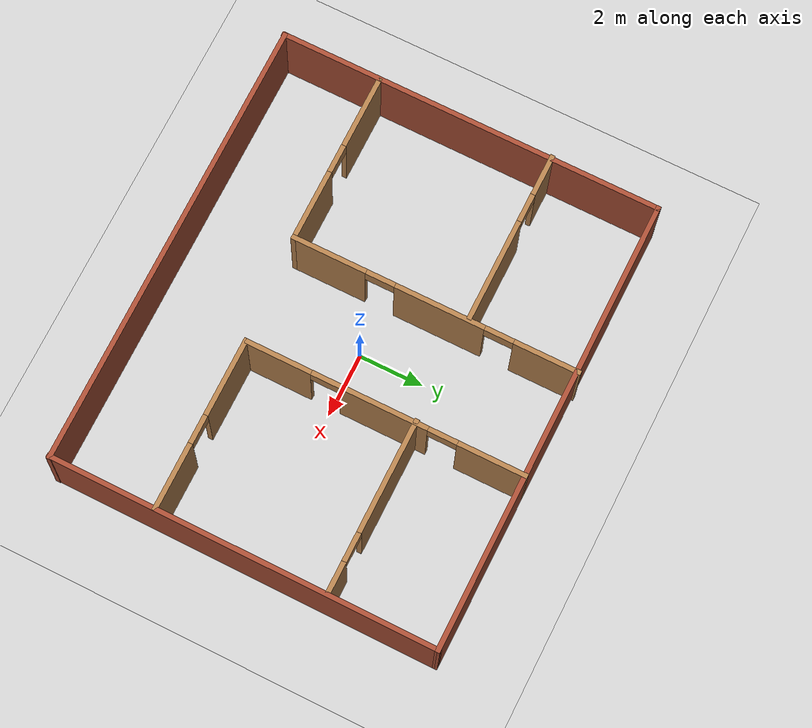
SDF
<sdf version="1.7">
 <world name="default">
  <light name="sun" type="directional">
   <pose>0 0 10 0 -0 0</pose>
   <diffuse>0.8 0.8 0.8 1</diffuse>
   <specular>0.2 0.2 0.2 1</specular>
   <attenuation>
    <range>1000</range>
    <constant>0.9</constant>
    <linear>0.01</linear>
    <quadratic>0.001</quadratic>
   </attenuation>
   <direction>-0.5 0.1 -0.9</direction>
   <spot><inner_angle>0</inner_angle><outer_angle>0</outer_angle><falloff>0</falloff></spot>
  </light>
  <model name="ground_plane">
   <static>1</static>
   <link name="link">
    <collision name="collision">
     <geometry><plane><normal>0 0 1</normal><size>100 100</size></plane></geometry>
     <surface><friction><ode><mu>100</mu><mu2>50</mu2></ode></friction></surface>
    </collision>
    <visual name="visual">
     <cast_shadows>0</cast_shadows>
     <geometry><plane><normal>0 0 1</normal><size>100 100</size></plane></geometry>
     <material>
      <script><uri>file://media/materials/scripts/gazebo.material</uri><name>Gazebo/Grey</name></script>
     </material>
    </visual>
   </link>
  </model>
  <gravity>0 0 -9.8</gravity>
  <magnetic_field>6e-06 2.3e-05 -4.2e-05</magnetic_field>
  <atmosphere type="adiabatic"/>
  <physics type="ode">
   <max_step_size>0.001</max_step_size>
   <real_time_factor>1</real_time_factor>
   <real_time_update_rate>1000</real_time_update_rate>
  </physics>
  <scene><ambient>0.4 0.4 0.4 1</ambient><background>0.7 0.7 0.7 1</background><shadows>1</shadows></scene>
  <audio><device>default</device></audio>
  <spherical_coordinates>
   <surface_model>EARTH_WGS84</surface_model>
   <latitude_deg>0</latitude_deg>
   <longitude_deg>0</longitude_deg>
   <elevation>0</elevation>
   <heading_deg>0</heading_deg>
  </spherical_coordinates>
  <model name="my_floor">
   <pose>0.035132 -0.005772 0 0 -0 0</pose>
   <link name="Wall_1">
    <collision name="Wall_1_Collision">
     <geometry><box><size>12.035 0.15 2.5</size></box></geometry>
     <pose>0 0 1.25 0 -0 0</pose>
    </collision>
    <visual name="Wall_1_Visual">
     <pose>0 0 1.25 0 -0 0</pose>
     <geometry><box><size>12.035 0.15 2.5</size></box></geometry>
     <material>
      <script><uri>file://media/materials/scripts/gazebo.material</uri><name>Gazebo/Bricks</name></script>
      <ambient>0.435294 0.796078 0.67451 1</ambient>
     </material>
     <meta><layer>0</layer></meta>
    </visual>
    <pose>-7.04136 -0.026125 0 0 -0 -1.57374</pose>
   </link>
   <link name="Wall_17">
    <pose>-1.63694 1.54384 0 0 -0 -1.5708</pose>
    <visual name="Wall_17_Visual_0">
     <pose>-3.47194 0 1.25 0 -0 0</pose>
     <geometry><box><size>2.05612 0.15 2.5</size></box></geometry>
     <material>
      <script><uri>file://media/materials/scripts/gazebo.material</uri><name>Gazebo/Wood</name></script>
      <ambient>1 1 1 1</ambient>
     </material>
     <meta><layer>0</layer></meta>
    </visual>
    <collision name="Wall_17_Collision_0">
     <geometry><box><size>2.05612 0.15 2.5</size></box></geometry>
     <pose>-3.47194 0 1.25 0 -0 0</pose>
    </collision>
    <visual name="Wall_17_Visual_1">
     <pose>-0.14868 0 1.25 0 -0 0</pose>
     <geometry><box><size>2.7904 0.15 2.5</size></box></geometry>
     <material>
      <script><uri>file://media/materials/scripts/gazebo.material</uri><name>Gazebo/Wood</name></script>
      <ambient>1 1 1 1</ambient>
     </material>
     <meta><layer>0</layer></meta>
    </visual>
    <collision name="Wall_17_Collision_1">
     <geometry><box><size>2.7904 0.15 2.5</size></box></geometry>
     <pose>-0.14868 0 1.25 0 -0 0</pose>
    </collision>
    <visual name="Wall_17_Visual_2">
     <pose>3.32326 0 1.25 0 -0 0</pose>
     <geometry><box><size>2.35348 0.15 2.5</size></box></geometry>
     <material>
      <script><uri>file://media/materials/scripts/gazebo.material</uri><name>Gazebo/Wood</name></script>
      <ambient>1 1 1 1</ambient>
     </material>
     <meta><layer>0</layer></meta>
    </visual>
    <collision name="Wall_17_Collision_2">
     <geometry><box><size>2.35348 0.15 2.5</size></box></geometry>
     <pose>3.32326 0 1.25 0 -0 0</pose>
    </collision>
    <visual name="Wall_17_Visual_3">
     <pose>-1.99388 0 2.25 0 -0 0</pose>
     <geometry><box><size>0.9 0.15 0.5</size></box></geometry>
     <material>
      <script><uri>file://media/materials/scripts/gazebo.material</uri><name>Gazebo/Wood</name></script>
      <ambient>1 1 1 1</ambient>
     </material>
     <meta><layer>0</layer></meta>
    </visual>
    <collision name="Wall_17_Collision_3">
     <geometry><box><size>0.9 0.15 0.5</size></box></geometry>
     <pose>-1.99388 0 2.25 0 -0 0</pose>
    </collision>
    <visual name="Wall_17_Visual_4">
     <pose>1.69652 0 2.25 0 -0 0</pose>
     <geometry><box><size>0.9 0.15 0.5</size></box></geometry>
     <material>
      <script><uri>file://media/materials/scripts/gazebo.material</uri><name>Gazebo/Wood</name></script>
      <ambient>1 1 1 1</ambient>
     </material>
     <meta><layer>0</layer></meta>
    </visual>
    <collision name="Wall_17_Collision_4">
     <geometry><box><size>0.9 0.15 0.5</size></box></geometry>
     <pose>1.69652 0 2.25 0 -0 0</pose>
    </collision>
   </link>
   <link name="Wall_18">
    <pose>-4.31194 -2.88117 0 0 -0 3.14159</pose>
    <visual name="Wall_18_Visual_0">
     <pose>-1.60825 0 1.25 0 -0 0</pose>
     <geometry><box><size>2.28349 0.15 2.5</size></box></geometry>
     <material>
      <script><uri>file://media/materials/scripts/gazebo.material</uri><name>Gazebo/Wood</name></script>
      <ambient>1 1 1 1</ambient>
     </material>
     <meta><layer>0</layer></meta>
    </visual>
    <collision name="Wall_18_Collision_0">
     <geometry><box><size>2.28349 0.15 2.5</size></box></geometry>
     <pose>-1.60825 0 1.25 0 -0 0</pose>
    </collision>
    <visual name="Wall_18_Visual_1">
     <pose>1.59174 0 1.25 0 -0 0</pose>
     <geometry><box><size>2.31651 0.15 2.5</size></box></geometry>
     <material>
      <script><uri>file://media/materials/scripts/gazebo.material</uri><name>Gazebo/Wood</name></script>
      <ambient>1 1 1 1</ambient>
     </material>
     <meta><layer>0</layer></meta>
    </visual>
    <collision name="Wall_18_Collision_1">
     <geometry><box><size>2.31651 0.15 2.5</size></box></geometry>
     <pose>1.59174 0 1.25 0 -0 0</pose>
    </collision>
    <visual name="Wall_18_Visual_2">
     <pose>-0.01651 0 2.25 0 -0 0</pose>
     <geometry><box><size>0.9 0.15 0.5</size></box></geometry>
     <material>
      <script><uri>file://media/materials/scripts/gazebo.material</uri><name>Gazebo/Wood</name></script>
      <ambient>1 1 1 1</ambient>
     </material>
     <meta><layer>0</layer></meta>
    </visual>
    <collision name="Wall_18_Collision_2">
     <geometry><box><size>0.9 0.15 0.5</size></box></geometry>
     <pose>-0.01651 0 2.25 0 -0 0</pose>
    </collision>
   </link>
   <link name="Wall_2">
    <collision name="Wall_2_Collision">
     <geometry><box><size>14.25 0.15 2.5</size></box></geometry>
     <pose>0 0 1.25 0 -0 0</pose>
    </collision>
    <visual name="Wall_2_Visual">
     <pose>0 0 1.25 0 -0 0</pose>
     <geometry><box><size>14.25 0.15 2.5</size></box></geometry>
     <material>
      <script><uri>file://media/materials/scripts/gazebo.material</uri><name>Gazebo/Bricks</name></script>
      <ambient>0.435294 0.796078 0.67451 1</ambient>
     </material>
     <meta><layer>0</layer></meta>
    </visual>
    <pose>0.008635 -5.95113 0 0 -0 0</pose>
   </link>
   <link name="Wall_20">
    <pose>-4.40135 2.57576 0 0 -0 0</pose>
    <visual name="Wall_20_Visual_0">
     <pose>-2.08049 0 1.25 0 -0 0</pose>
     <geometry><box><size>1.33903 0.15 2.5</size></box></geometry>
     <material>
      <script><uri>file://media/materials/scripts/gazebo.material</uri><name>Gazebo/Wood</name></script>
      <ambient>1 1 1 1</ambient>
     </material>
     <meta><layer>0</layer></meta>
    </visual>
    <collision name="Wall_20_Collision_0">
     <geometry><box><size>1.33903 0.15 2.5</size></box></geometry>
     <pose>-2.08049 0 1.25 0 -0 0</pose>
    </collision>
    <visual name="Wall_20_Visual_1">
     <pose>1.11951 0 1.25 0 -0 0</pose>
     <geometry><box><size>3.26097 0.15 2.5</size></box></geometry>
     <material>
      <script><uri>file://media/materials/scripts/gazebo.material</uri><name>Gazebo/Wood</name></script>
      <ambient>1 1 1 1</ambient>
     </material>
     <meta><layer>0</layer></meta>
    </visual>
    <collision name="Wall_20_Collision_1">
     <geometry><box><size>3.26097 0.15 2.5</size></box></geometry>
     <pose>1.11951 0 1.25 0 -0 0</pose>
    </collision>
    <visual name="Wall_20_Visual_2">
     <pose>-0.960974 0 2.25 0 -0 0</pose>
     <geometry><box><size>0.9 0.15 0.5</size></box></geometry>
     <material>
      <script><uri>file://media/materials/scripts/gazebo.material</uri><name>Gazebo/Wood</name></script>
      <ambient>1 1 1 1</ambient>
     </material>
     <meta><layer>0</layer></meta>
    </visual>
    <collision name="Wall_20_Collision_2">
     <geometry><box><size>0.9 0.15 0.5</size></box></geometry>
     <pose>-0.960974 0 2.25 0 -0 0</pose>
    </collision>
   </link>
   <link name="Wall_22">
    <pose>1.68618 1.61637 0 0 -0 -1.5708</pose>
    <visual name="Wall_22_Visual_0">
     <pose>-3.31196 0 1.25 0 -0 0</pose>
     <geometry><box><size>2.12608 0.15 2.5</size></box></geometry>
     <material>
      <script><uri>file://media/materials/scripts/gazebo.material</uri><name>Gazebo/Wood</name></script>
      <ambient>1 1 1 1</ambient>
     </material>
     <meta><layer>0</layer></meta>
    </visual>
    <collision name="Wall_22_Collision_0">
     <geometry><box><size>2.12608 0.15 2.5</size></box></geometry>
     <pose>-3.31196 0 1.25 0 -0 0</pose>
    </collision>
    <visual name="Wall_22_Visual_1">
     <pose>0.002555 0 1.25 0 -0 0</pose>
     <geometry><box><size>2.70295 0.15 2.5</size></box></geometry>
     <material>
      <script><uri>file://media/materials/scripts/gazebo.material</uri><name>Gazebo/Wood</name></script>
      <ambient>1 1 1 1</ambient>
     </material>
     <meta><layer>0</layer></meta>
    </visual>
    <collision name="Wall_22_Collision_1">
     <geometry><box><size>2.70295 0.15 2.5</size></box></geometry>
     <pose>0.002555 0 1.25 0 -0 0</pose>
    </collision>
    <visual name="Wall_22_Visual_2">
     <pose>3.31452 0 1.25 0 -0 0</pose>
     <geometry><box><size>2.12097 0.15 2.5</size></box></geometry>
     <material>
      <script><uri>file://media/materials/scripts/gazebo.material</uri><name>Gazebo/Wood</name></script>
      <ambient>1 1 1 1</ambient>
     </material>
     <meta><layer>0</layer></meta>
    </visual>
    <collision name="Wall_22_Collision_2">
     <geometry><box><size>2.12097 0.15 2.5</size></box></geometry>
     <pose>3.31452 0 1.25 0 -0 0</pose>
    </collision>
    <visual name="Wall_22_Visual_3">
     <pose>-1.79892 0 2.25 0 -0 0</pose>
     <geometry><box><size>0.9 0.15 0.5</size></box></geometry>
     <material>
      <script><uri>file://media/materials/scripts/gazebo.material</uri><name>Gazebo/Wood</name></script>
      <ambient>1 1 1 1</ambient>
     </material>
     <meta><layer>0</layer></meta>
    </visual>
    <collision name="Wall_22_Collision_3">
     <geometry><box><size>0.9 0.15 0.5</size></box></geometry>
     <pose>-1.79892 0 2.25 0 -0 0</pose>
    </collision>
    <visual name="Wall_22_Visual_4">
     <pose>1.80403 0 2.25 0 -0 0</pose>
     <geometry><box><size>0.9 0.15 0.5</size></box></geometry>
     <material>
      <script><uri>file://media/materials/scripts/gazebo.material</uri><name>Gazebo/Wood</name></script>
      <ambient>1 1 1 1</ambient>
     </material>
     <meta><layer>0</layer></meta>
    </visual>
    <collision name="Wall_22_Collision_4">
     <geometry><box><size>0.9 0.15 0.5</size></box></geometry>
     <pose>1.80403 0 2.25 0 -0 0</pose>
    </collision>
   </link>
   <link name="Wall_26">
    <pose>4.36118 -2.68364 0 0 -0 0</pose>
    <visual name="Wall_26_Visual_0">
     <pose>-1.51206 0 1.25 0 -0 0</pose>
     <geometry><box><size>2.47588 0.15 2.5</size></box></geometry>
     <material>
      <script><uri>file://media/materials/scripts/gazebo.material</uri><name>Gazebo/Wood</name></script>
      <ambient>1 1 1 1</ambient>
     </material>
     <meta><layer>0</layer></meta>
    </visual>
    <collision name="Wall_26_Collision_0">
     <geometry><box><size>2.47588 0.15 2.5</size></box></geometry>
     <pose>-1.51206 0 1.25 0 -0 0</pose>
    </collision>
    <visual name="Wall_26_Visual_1">
     <pose>1.68794 0 1.25 0 -0 0</pose>
     <geometry><box><size>2.12412 0.15 2.5</size></box></geometry>
     <material>
      <script><uri>file://media/materials/scripts/gazebo.material</uri><name>Gazebo/Wood</name></script>
      <ambient>1 1 1 1</ambient>
     </material>
     <meta><layer>0</layer></meta>
    </visual>
    <collision name="Wall_26_Collision_1">
     <geometry><box><size>2.12412 0.15 2.5</size></box></geometry>
     <pose>1.68794 0 1.25 0 -0 0</pose>
    </collision>
    <visual name="Wall_26_Visual_2">
     <pose>0.17588 0 2.25 0 -0 0</pose>
     <geometry><box><size>0.9 0.15 0.5</size></box></geometry>
     <material>
      <script><uri>file://media/materials/scripts/gazebo.material</uri><name>Gazebo/Wood</name></script>
      <ambient>1 1 1 1</ambient>
     </material>
     <meta><layer>0</layer></meta>
    </visual>
    <collision name="Wall_26_Collision_2">
     <geometry><box><size>0.9 0.15 0.5</size></box></geometry>
     <pose>0.17588 0 2.25 0 -0 0</pose>
    </collision>
   </link>
   <link name="Wall_29">
    <pose>4.3262 2.57576 0 0 -0 0</pose>
    <visual name="Wall_29_Visual_0">
     <pose>-0.961123 0 1.25 0 -0 0</pose>
     <geometry><box><size>3.57775 0.15 2.5</size></box></geometry>
     <material>
      <script><uri>file://media/materials/scripts/gazebo.material</uri><name>Gazebo/Wood</name></script>
      <ambient>1 1 1 1</ambient>
     </material>
     <meta><layer>0</layer></meta>
    </visual>
    <collision name="Wall_29_Collision_0">
     <geometry><box><size>3.57775 0.15 2.5</size></box></geometry>
     <pose>-0.961123 0 1.25 0 -0 0</pose>
    </collision>
    <visual name="Wall_29_Visual_1">
     <pose>2.23888 0 1.25 0 -0 0</pose>
     <geometry><box><size>1.02225 0.15 2.5</size></box></geometry>
     <material>
      <script><uri>file://media/materials/scripts/gazebo.material</uri><name>Gazebo/Wood</name></script>
      <ambient>1 1 1 1</ambient>
     </material>
     <meta><layer>0</layer></meta>
    </visual>
    <collision name="Wall_29_Collision_1">
     <geometry><box><size>1.02225 0.15 2.5</size></box></geometry>
     <pose>2.23888 0 1.25 0 -0 0</pose>
    </collision>
    <visual name="Wall_29_Visual_2">
     <pose>1.27775 0 2.25 0 -0 0</pose>
     <geometry><box><size>0.9 0.15 0.5</size></box></geometry>
     <material>
      <script><uri>file://media/materials/scripts/gazebo.material</uri><name>Gazebo/Wood</name></script>
      <ambient>1 1 1 1</ambient>
     </material>
     <meta><layer>0</layer></meta>
    </visual>
    <collision name="Wall_29_Collision_2">
     <geometry><box><size>0.9 0.15 0.5</size></box></geometry>
     <pose>1.27775 0 2.25 0 -0 0</pose>
    </collision>
   </link>
   <link name="Wall_3">
    <collision name="Wall_3_Collision">
     <geometry><box><size>12.035 0.15 2.5</size></box></geometry>
     <pose>0 0 1.25 0 -0 0</pose>
    </collision>
    <visual name="Wall_3_Visual">
     <pose>0 0 1.25 0 -0 0</pose>
     <geometry><box><size>12.035 0.15 2.5</size></box></geometry>
     <material>
      <script><uri>file://media/materials/scripts/gazebo.material</uri><name>Gazebo/Bricks</name></script>
      <ambient>0.435294 0.796078 0.67451 1</ambient>
     </material>
     <meta><layer>0</layer></meta>
    </visual>
    <pose>7.05863 -0.026125 0 0 -0 1.56785</pose>
   </link>
   <link name="Wall_4">
    <collision name="Wall_4_Collision">
     <geometry><box><size>14.25 0.15 2.5</size></box></geometry>
     <pose>0 0 1.25 0 -0 0</pose>
    </collision>
    <visual name="Wall_4_Visual">
     <pose>0 0 1.25 0 -0 0</pose>
     <geometry><box><size>14.25 0.15 2.5</size></box></geometry>
     <material>
      <script><uri>file://media/materials/scripts/gazebo.material</uri><name>Gazebo/Bricks</name></script>
      <ambient>0.435294 0.796078 0.67451 1</ambient>
     </material>
     <meta><layer>0</layer></meta>
    </visual>
    <pose>0.026125 5.91636 0 0 -0 3.14159</pose>
   </link>
   <static>1</static>
  </model>
 </world>
</sdf>
